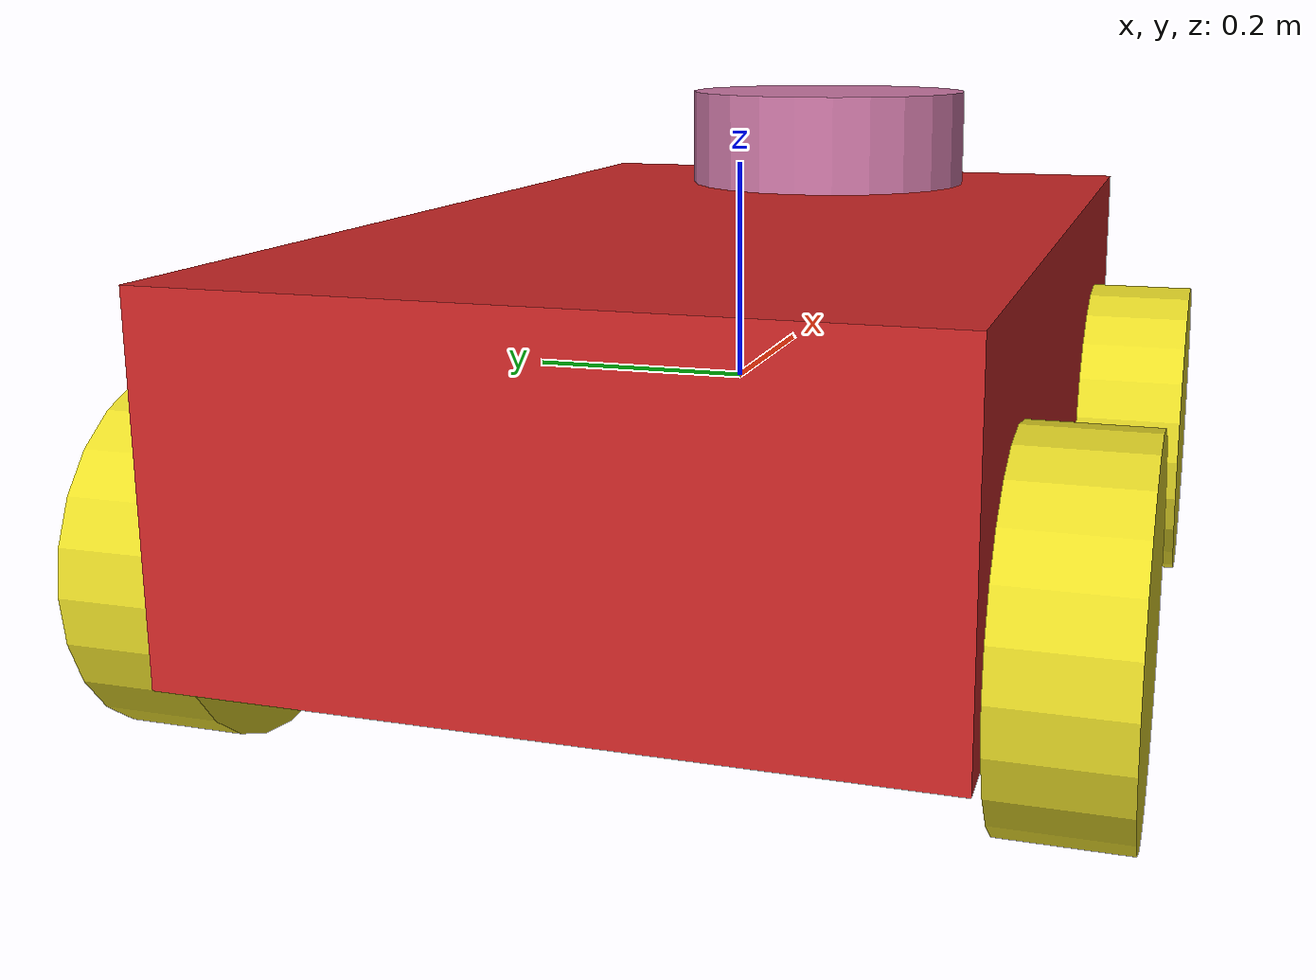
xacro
<?xml version="1.0"?>

<robot name="differential_drive_robot" xmlns:xacro="http://www.ros.org/wiki/xacro">

<!-- Body dimensions -->
<xacro:property name="body_link_x_dim" value="1"/>
<xacro:property name="body_link_y_dim" value="0.6"/>
<xacro:property name="body_link_z_dim" value="0.3"/>

<!-- Wheel dimensions -->
<xacro:property name="wheel_link_radius" value="0.15"/>
<xacro:property name="wheel_link_length" value="0.1"/>
<xacro:property name="wheel_link_z_location" value="-0.1"/>

<!-- Material density -->
<xacro:property name="body_density" value="2710.0"/>
<xacro:property name="wheel_density" value="2710.0"/>

<!-- Pi constant -->
<xacro:property name="pi_const" value="3.14159265"/>

<!-- Robot body and wheel mass -->
<xacro:property name="body_mass" value="${body_density*body_link_x_dim*body_link_y_dim*body_link_z_dim}"/>
<xacro:property name="wheel_mass" value="${wheel_density*pi_const*wheel_link_radius*wheel_link_radius*wheel_link_length}"/>

<!-- Moments of inertia of the wheel -->
<xacro:property name="Iz_wheel" value="${0.5*wheel_mass*wheel_link_radius*wheel_link_radius}"/>
<xacro:property name="I_wheel" value="${(1.0/12.0)*wheel_mass*(3.0*wheel_link_radius*wheel_link_radius+wheel_link_length*wheel_link_length)}"/>

<!-- This macro defines the complete inertial section of the wheel -->
<!-- It is used later in the code -->
<xacro:macro name="inertia_wheel">
    <inertial>
	<origin rpy="0 0 0" xyz="0 0 0"/>
	<mass value="${wheel_mass}"/>
	<inertia ixx="${I_wheel}" ixy="0.0" ixz="0.0" iyy="${I_wheel}" iyz="0" izz="${Iz_wheel}"/>
	</inertial>
</xacro:macro>

<!-- Over here we include the file that defines extra Gazebo options and motion control driver -->
<xacro:include filename="$(find robot_model_pkg)/urdf/robot.gazebo"/>

<!-- FROM HERE WE DEFINE LINKS, JOINTS              -->

<!-- We need to have this dummy link otherwise Gazebo will complain -->
<link name="dummy">
</link>
<joint name="dummy_joint" type="fixed">
	<parent link="dummy"/>
	<child link="body_link"/>
</joint>

<!-- START: Body link of the robot                  -->

<link name="body_link">
	<visual>
		<geometry>
			<box size="${body_link_x_dim} ${body_link_y_dim} ${body_link_z_dim}"/>
		</geometry>
	<origin rpy="0 0 0" xyz="0 0 0"/>
	</visual>

	<collision>
		<geometry>
			<box size="${body_link_x_dim} ${body_link_y_dim} ${body_link_z_dim}"/>
		</geometry>
		<origin rpy="0 0 0" xyz="0 0 0"/>
	</collision>

	<inertial>
		<origin rpy="0 0 0" xyz="0 0 0"/>
		<mass value="${body_mass}"/>
	<inertia
	ixx="${(1/12)*body_mass*(body_link_y_dim*body_link_y_dim+body_link_z_dim*body_link_z_dim)}"
	ixy="0"
	ixz="0" iyy="${(1/12)*body_mass*(body_link_x_dim*body_link_x_dim+body_link_z_dim*body_link_z_dim)}"
	iyz="0"
	izz="${(1/12)*body_mass*(body_link_y_dim*body_link_y_dim+body_link_x_dim*body_link_x_dim)}"/>
	</inertial>
</link>

<!-- END: Body link of the robot                    -->

<!-- START: Back right wheel of the robot and the joint  -->

<joint name="wheel1_joint" type="continuous" >
	<parent link="body_link"/>
	<child  link="wheel1_link" />
	<origin xyz="${-body_link_x_dim/2+1.2*wheel_link_radius} ${-body_link_y_dim/2-wheel_link_length/2} ${wheel_link_z_location}" rpy="0 0 0" />
	<axis xyz="0 1 0"/>
	<limit effort="1000" velocity="1000"/>
	<dynamics damping="1.0" friction="1.0"/>
</joint>

<link name="wheel1_link">
	<visual>
		<origin rpy="1.570795 0 0" xyz="0 0 0"/>
		<geometry>
			<cylinder length="${wheel_link_length}" radius="${wheel_link_radius}"/>
		</geometry>
	</visual>

	<collision>
		<origin rpy="1.570795 0 0" xyz="0 0 0"/>
			<geometry>
				<cylinder length="${wheel_link_length}" radius="${wheel_link_radius}"/>
			</geometry>
	</collision>
	<xacro:inertia_wheel/>
</link>

<!-- END: Back right wheel of the robot and the joint  -->

<!-- START: Back left wheel of the robot and the joint   -->

<joint name="wheel2_joint" type="continuous" >
	<parent link="body_link"/>
	<child  link="wheel2_link" />
	<origin xyz="${-body_link_x_dim/2+1.2*wheel_link_radius} ${body_link_y_dim/2+wheel_link_length/2} ${wheel_link_z_location}" rpy="0 0 0" />
	<axis xyz="0 1 0"/>
	<limit effort="1000" velocity="1000"/>
	<dynamics damping="1.0" friction="1.0"/>
</joint>

<link name="wheel2_link">
	<visual>
		<origin rpy="1.570795 0 0" xyz="0 0 0"/>
		<geometry>
			<cylinder length="${wheel_link_length}" radius="${wheel_link_radius}"/>
		</geometry>
	</visual>

	<collision>
		<origin rpy="1.570795 0 0" xyz="0 0 0"/>
		<geometry>
			<cylinder length="${wheel_link_length}" radius="${wheel_link_radius}"/>
		</geometry>
	</collision>
	<xacro:inertia_wheel/>
</link>

<!-- END: Back left wheel of the robot and the joint   -->

<!-- START: Front right wheel of the robot and the joint -->

<joint name="wheel3_joint" type="continuous" >
	<parent link="body_link"/>
	<child  link="wheel3_link" />
	<origin xyz="${body_link_x_dim/2-1.2*wheel_link_radius} ${-body_link_y_dim/2-wheel_link_length/2} ${wheel_link_z_location}" rpy="0 0 0" />
	<axis xyz="0 1 0"/>
	<limit effort="1000" velocity="1000"/>
	<dynamics damping="1.0" friction="1.0"/>
</joint>

<link name="wheel3_link">
	<visual>
		<origin rpy="1.570795 0 0" xyz="0 0 0"/>
		<geometry>
			<cylinder length="${wheel_link_length}" radius="${wheel_link_radius}"/>
		</geometry>
		</visual>

	<collision>
		<origin rpy="1.570795 0 0" xyz="0 0 0"/>
		<geometry>
			<cylinder length="${wheel_link_length}" radius="${wheel_link_radius}"/>
		</geometry>
	</collision>
	<xacro:inertia_wheel/>
</link>

<!-- END: Front right wheel of the robot and the joint -->

<!-- START: Front left wheel of the robot and the joint  -->

<joint name="wheel4_joint" type="continuous" >
	<parent link="body_link"/>
	<child  link="wheel4_link" />
	<origin xyz="${body_link_x_dim/2-1.2*wheel_link_radius} ${body_link_y_dim/2+wheel_link_length/2} ${wheel_link_z_location}" rpy="0 0 0" />
	<axis xyz="0 1 0"/>
	<limit effort="1000" velocity="1000"/>
	<dynamics damping="1.0" friction="1.0"/>
</joint>

<link name="wheel4_link">
	<visual>
		<origin rpy="1.570795 0 0" xyz="0 0 0"/>
		<geometry>
			<cylinder length="${wheel_link_length}" radius="${wheel_link_radius}"/>
		</geometry>
	</visual>

	<collision>
		<origin rpy="1.570795 0 0" xyz="0 0 0"/>
		<geometry>
			<cylinder length="${wheel_link_length}" radius="${wheel_link_radius}"/>
		</geometry>
	</collision>
	<xacro:inertia_wheel/>
</link>

<!-- END: Front left wheel of the robot and the joint  -->

<!-- Hokuyo Laser -->

<joint name="hokuyo_joint" type="fixed">
    <axis xyz="0 1 0" />
    <origin xyz="0.35 0 0.20" rpy="0 0 0"/>
    <parent link="body_link"/>
    <child link="hokuyo_link"/>
</joint>

<link name="hokuyo_link">

    <visual>
      	<origin xyz="0 0 0" rpy="0 0 0"/>
      	<geometry>
			<cylinder length="${wheel_link_length}" radius="${wheel_link_radius}"/>
      	</geometry>
    </visual>

</link>

</robot>
